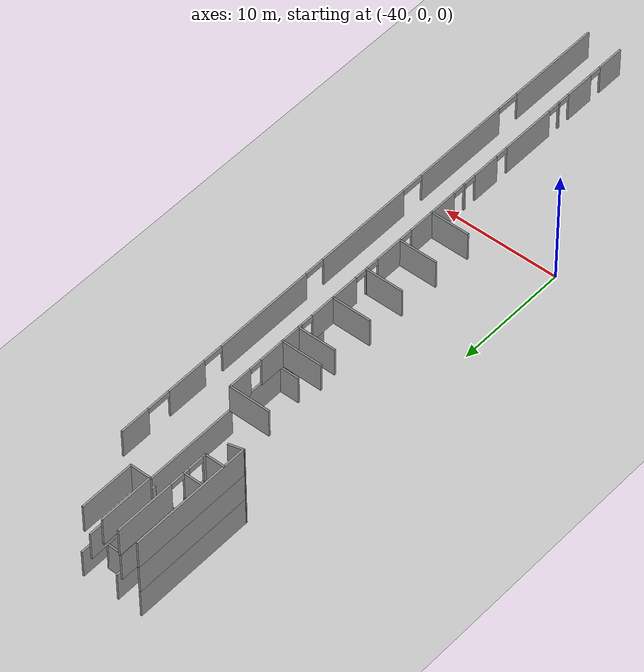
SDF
<sdf version="1.7">
 <world name="default">
  <model name="ground_plane">
   <static>1</static>
   <link name="link">
    <collision name="collision">
     <geometry><plane><normal>0 0 1</normal><size>100 100</size></plane></geometry>
     <surface><friction><ode><mu>100</mu><mu2>50</mu2></ode></friction></surface>
    </collision>
    <visual name="visual">
     <cast_shadows>0</cast_shadows>
     <geometry><plane><normal>0 0 1</normal><size>100 100</size></plane></geometry>
     <material>
      <script><uri>file://media/materials/scripts/gazebo.material</uri><name>Gazebo/Grey</name></script>
     </material>
    </visual>
   </link>
  </model>
  <model name="Anselm_Turmeda">
   <pose>-32.7988 -2.37459 0 0 -0 0</pose>
   <link name="Wall_10">
    <collision name="Wall_10_Collision">
     <geometry><box><size>10.5 0.15 2.5</size></box></geometry>
     <pose>0 0 1.25 0 -0 0</pose>
    </collision>
    <visual name="Wall_10_Visual">
     <pose>0 0 1.25 0 -0 0</pose>
     <geometry><box><size>10.5 0.15 2.5</size></box></geometry>
     <material>
      <script><uri>file://media/materials/scripts/gazebo.material</uri><name>Gazebo/Grey</name></script>
      <ambient>1 1 1 1</ambient>
     </material>
     <meta><layer>0</layer></meta>
    </visual>
    <pose>-5.37628 38.6025 0 0 -0 -1.5708</pose>
   </link>
   <link name="Wall_11">
    <collision name="Wall_11_Collision">
     <geometry><box><size>1.25 0.15 2.5</size></box></geometry>
     <pose>0 0 1.25 0 -0 0</pose>
    </collision>
    <visual name="Wall_11_Visual">
     <pose>0 0 1.25 0 -0 0</pose>
     <geometry><box><size>1.25 0.15 2.5</size></box></geometry>
     <material>
      <script><uri>file://media/materials/scripts/gazebo.material</uri><name>Gazebo/Grey</name></script>
      <ambient>1 1 1 1</ambient>
     </material>
     <meta><layer>0</layer></meta>
    </visual>
    <pose>-4.84502 33.5698 0 0 -0 0.261799</pose>
   </link>
   <link name="Wall_291">
    <pose>1.80373 12.5669 5 0 -0 1.5708</pose>
    <visual name="Wall_291_Visual_0">
     <pose>-20.7508 0 1.25 0 -0 0</pose>
     <geometry><box><size>8.24846 0.15 2.5</size></box></geometry>
     <material>
      <script><uri>file://media/materials/scripts/gazebo.material</uri><name>Gazebo/Grey</name></script>
      <ambient>1 1 1 1</ambient>
     </material>
     <meta><layer>2</layer></meta>
    </visual>
    <collision name="Wall_291_Collision_0">
     <geometry><box><size>8.24846 0.15 2.5</size></box></geometry>
     <pose>-20.7508 0 1.25 0 -0 0</pose>
    </collision>
    <visual name="Wall_291_Visual_1">
     <pose>-10.348 0 1.25 0 -0 0</pose>
     <geometry><box><size>8.59057 0.15 2.5</size></box></geometry>
     <material>
      <script><uri>file://media/materials/scripts/gazebo.material</uri><name>Gazebo/Grey</name></script>
      <ambient>1 1 1 1</ambient>
     </material>
     <meta><layer>2</layer></meta>
    </visual>
    <collision name="Wall_291_Collision_1">
     <geometry><box><size>8.59057 0.15 2.5</size></box></geometry>
     <pose>-10.348 0 1.25 0 -0 0</pose>
    </collision>
    <visual name="Wall_291_Visual_2">
     <pose>0.182196 0 1.25 0 -0 0</pose>
     <geometry><box><size>8.60034 0.15 2.5</size></box></geometry>
     <material>
      <script><uri>file://media/materials/scripts/gazebo.material</uri><name>Gazebo/Grey</name></script>
      <ambient>1 1 1 1</ambient>
     </material>
     <meta><layer>2</layer></meta>
    </visual>
    <collision name="Wall_291_Collision_2">
     <geometry><box><size>8.60034 0.15 2.5</size></box></geometry>
     <pose>0.182196 0 1.25 0 -0 0</pose>
    </collision>
    <visual name="Wall_291_Visual_3">
     <pose>10.5989 0 1.25 0 -0 0</pose>
     <geometry><box><size>8.67698 0.15 2.5</size></box></geometry>
     <material>
      <script><uri>file://media/materials/scripts/gazebo.material</uri><name>Gazebo/Grey</name></script>
      <ambient>1 1 1 1</ambient>
     </material>
     <meta><layer>2</layer></meta>
    </visual>
    <collision name="Wall_291_Collision_3">
     <geometry><box><size>8.67698 0.15 2.5</size></box></geometry>
     <pose>10.5989 0 1.25 0 -0 0</pose>
    </collision>
    <visual name="Wall_291_Visual_4">
     <pose>18.4605 0 1.25 0 -0 0</pose>
     <geometry><box><size>3.55516 0.15 2.5</size></box></geometry>
     <material>
      <script><uri>file://media/materials/scripts/gazebo.material</uri><name>Gazebo/Grey</name></script>
      <ambient>1 1 1 1</ambient>
     </material>
     <meta><layer>2</layer></meta>
    </visual>
    <collision name="Wall_291_Collision_4">
     <geometry><box><size>3.55516 0.15 2.5</size></box></geometry>
     <pose>18.4605 0 1.25 0 -0 0</pose>
    </collision>
    <visual name="Wall_291_Visual_5">
     <pose>23.5756 0 1.25 0 -0 0</pose>
     <geometry><box><size>2.59878 0.15 2.5</size></box></geometry>
     <material>
      <script><uri>file://media/materials/scripts/gazebo.material</uri><name>Gazebo/Grey</name></script>
      <ambient>1 1 1 1</ambient>
     </material>
     <meta><layer>2</layer></meta>
    </visual>
    <collision name="Wall_291_Collision_5">
     <geometry><box><size>2.59878 0.15 2.5</size></box></geometry>
     <pose>23.5756 0 1.25 0 -0 0</pose>
    </collision>
    <visual name="Wall_291_Visual_6">
     <pose>-15.6349 0 2.25 0 -0 0</pose>
     <geometry><box><size>1.98325 0.15 0.5</size></box></geometry>
     <material>
      <script><uri>file://media/materials/scripts/gazebo.material</uri><name>Gazebo/Grey</name></script>
      <ambient>1 1 1 1</ambient>
     </material>
     <meta><layer>2</layer></meta>
    </visual>
    <collision name="Wall_291_Collision_6">
     <geometry><box><size>1.98325 0.15 0.5</size></box></geometry>
     <pose>-15.6349 0 2.25 0 -0 0</pose>
    </collision>
    <visual name="Wall_291_Visual_7">
     <pose>-5.08535 0 2.25 0 -0 0</pose>
     <geometry><box><size>1.93475 0.15 0.5</size></box></geometry>
     <material>
      <script><uri>file://media/materials/scripts/gazebo.material</uri><name>Gazebo/Grey</name></script>
      <ambient>1 1 1 1</ambient>
     </material>
     <meta><layer>2</layer></meta>
    </visual>
    <collision name="Wall_291_Collision_7">
     <geometry><box><size>1.93475 0.15 0.5</size></box></geometry>
     <pose>-5.08535 0 2.25 0 -0 0</pose>
    </collision>
    <visual name="Wall_291_Visual_8">
     <pose>5.37138 0 2.25 0 -0 0</pose>
     <geometry><box><size>1.77802 0.15 0.5</size></box></geometry>
     <material>
      <script><uri>file://media/materials/scripts/gazebo.material</uri><name>Gazebo/Grey</name></script>
      <ambient>1 1 1 1</ambient>
     </material>
     <meta><layer>2</layer></meta>
    </visual>
    <collision name="Wall_291_Collision_8">
     <geometry><box><size>1.77802 0.15 0.5</size></box></geometry>
     <pose>5.37138 0 2.25 0 -0 0</pose>
    </collision>
    <visual name="Wall_291_Visual_9">
     <pose>15.8101 0 2.25 0 -0 0</pose>
     <geometry><box><size>1.74551 0.15 0.5</size></box></geometry>
     <material>
      <script><uri>file://media/materials/scripts/gazebo.material</uri><name>Gazebo/Grey</name></script>
      <ambient>1 1 1 1</ambient>
     </material>
     <meta><layer>2</layer></meta>
    </visual>
    <collision name="Wall_291_Collision_9">
     <geometry><box><size>1.74551 0.15 0.5</size></box></geometry>
     <pose>15.8101 0 2.25 0 -0 0</pose>
    </collision>
    <visual name="Wall_291_Visual_10">
     <pose>21.2571 0 2.25 0 -0 0</pose>
     <geometry><box><size>2.03818 0.15 0.5</size></box></geometry>
     <material>
      <script><uri>file://media/materials/scripts/gazebo.material</uri><name>Gazebo/Grey</name></script>
      <ambient>1 1 1 1</ambient>
     </material>
     <meta><layer>2</layer></meta>
    </visual>
    <collision name="Wall_291_Collision_10">
     <geometry><box><size>2.03818 0.15 0.5</size></box></geometry>
     <pose>21.2571 0 2.25 0 -0 0</pose>
    </collision>
   </link>
   <link name="Wall_303">
    <collision name="Wall_303_Collision">
     <geometry><box><size>3.5 0.15 2.5</size></box></geometry>
     <pose>0 0 1.25 0 -0 0</pose>
    </collision>
    <visual name="Wall_303_Visual">
     <pose>0 0 1.25 0 -0 0</pose>
     <geometry><box><size>3.5 0.15 2.5</size></box></geometry>
     <material>
      <script><uri>file://media/materials/scripts/gazebo.material</uri><name>Gazebo/Grey</name></script>
      <ambient>1 1 1 1</ambient>
     </material>
     <meta><layer>2</layer></meta>
    </visual>
    <pose>-2.71008 29.8134 5 0 -0 0</pose>
   </link>
   <link name="Wall_304">
    <pose>-1.03508 8.7634 5 0 -0 -1.5708</pose>
    <visual name="Wall_304_Visual_0">
     <pose>-20.1007 0 1.25 0 -0 0</pose>
     <geometry><box><size>2.04853 0.15 2.5</size></box></geometry>
     <material>
      <script><uri>file://media/materials/scripts/gazebo.material</uri><name>Gazebo/Grey</name></script>
      <ambient>1 1 1 1</ambient>
     </material>
     <meta><layer>2</layer></meta>
    </visual>
    <collision name="Wall_304_Collision_0">
     <geometry><box><size>2.04853 0.15 2.5</size></box></geometry>
     <pose>-20.1007 0 1.25 0 -0 0</pose>
    </collision>
    <visual name="Wall_304_Visual_1">
     <pose>-15.8724 0 1.25 0 -0 0</pose>
     <geometry><box><size>4.20265 0.15 2.5</size></box></geometry>
     <material>
      <script><uri>file://media/materials/scripts/gazebo.material</uri><name>Gazebo/Grey</name></script>
      <ambient>1 1 1 1</ambient>
     </material>
     <meta><layer>2</layer></meta>
    </visual>
    <collision name="Wall_304_Collision_1">
     <geometry><box><size>4.20265 0.15 2.5</size></box></geometry>
     <pose>-15.8724 0 1.25 0 -0 0</pose>
    </collision>
    <visual name="Wall_304_Visual_2">
     <pose>-10.4225 0 1.25 0 -0 0</pose>
     <geometry><box><size>4.57209 0.15 2.5</size></box></geometry>
     <material>
      <script><uri>file://media/materials/scripts/gazebo.material</uri><name>Gazebo/Grey</name></script>
      <ambient>1 1 1 1</ambient>
     </material>
     <meta><layer>2</layer></meta>
    </visual>
    <collision name="Wall_304_Collision_2">
     <geometry><box><size>4.57209 0.15 2.5</size></box></geometry>
     <pose>-10.4225 0 1.25 0 -0 0</pose>
    </collision>
    <visual name="Wall_304_Visual_3">
     <pose>-7.02601 0 1.25 0 -0 0</pose>
     <geometry><box><size>0.194499 0.15 2.5</size></box></geometry>
     <material>
      <script><uri>file://media/materials/scripts/gazebo.material</uri><name>Gazebo/Grey</name></script>
      <ambient>1 1 1 1</ambient>
     </material>
     <meta><layer>2</layer></meta>
    </visual>
    <collision name="Wall_304_Collision_3">
     <geometry><box><size>0.194499 0.15 2.5</size></box></geometry>
     <pose>-7.02601 0 1.25 0 -0 0</pose>
    </collision>
    <visual name="Wall_304_Visual_4">
     <pose>-4.61945 0 1.25 0 -0 0</pose>
     <geometry><box><size>2.43059 0.15 2.5</size></box></geometry>
     <material>
      <script><uri>file://media/materials/scripts/gazebo.material</uri><name>Gazebo/Grey</name></script>
      <ambient>1 1 1 1</ambient>
     </material>
     <meta><layer>2</layer></meta>
    </visual>
    <collision name="Wall_304_Collision_4">
     <geometry><box><size>2.43059 0.15 2.5</size></box></geometry>
     <pose>-4.61945 0 1.25 0 -0 0</pose>
    </collision>
    <visual name="Wall_304_Visual_5">
     <pose>0.057115 0 1.25 0 -0 0</pose>
     <geometry><box><size>4.66985 0.15 2.5</size></box></geometry>
     <material>
      <script><uri>file://media/materials/scripts/gazebo.material</uri><name>Gazebo/Grey</name></script>
      <ambient>1 1 1 1</ambient>
     </material>
     <meta><layer>2</layer></meta>
    </visual>
    <collision name="Wall_304_Collision_5">
     <geometry><box><size>4.66985 0.15 2.5</size></box></geometry>
     <pose>0.057115 0 1.25 0 -0 0</pose>
    </collision>
    <visual name="Wall_304_Visual_6">
     <pose>3.51705 0 1.25 0 -0 0</pose>
     <geometry><box><size>0.158998 0.15 2.5</size></box></geometry>
     <material>
      <script><uri>file://media/materials/scripts/gazebo.material</uri><name>Gazebo/Grey</name></script>
      <ambient>1 1 1 1</ambient>
     </material>
     <meta><layer>2</layer></meta>
    </visual>
    <collision name="Wall_304_Collision_6">
     <geometry><box><size>0.158998 0.15 2.5</size></box></geometry>
     <pose>3.51705 0 1.25 0 -0 0</pose>
    </collision>
    <visual name="Wall_304_Visual_7">
     <pose>5.85979 0 1.25 0 -0 0</pose>
     <geometry><box><size>2.46779 0.15 2.5</size></box></geometry>
     <material>
      <script><uri>file://media/materials/scripts/gazebo.material</uri><name>Gazebo/Grey</name></script>
      <ambient>1 1 1 1</ambient>
     </material>
     <meta><layer>2</layer></meta>
    </visual>
    <collision name="Wall_304_Collision_7">
     <geometry><box><size>2.46779 0.15 2.5</size></box></geometry>
     <pose>5.85979 0 1.25 0 -0 0</pose>
    </collision>
    <visual name="Wall_304_Visual_8">
     <pose>10.5608 0 1.25 0 -0 0</pose>
     <geometry><box><size>4.79399 0.15 2.5</size></box></geometry>
     <material>
      <script><uri>file://media/materials/scripts/gazebo.material</uri><name>Gazebo/Grey</name></script>
      <ambient>1 1 1 1</ambient>
     </material>
     <meta><layer>2</layer></meta>
    </visual>
    <collision name="Wall_304_Collision_8">
     <geometry><box><size>4.79399 0.15 2.5</size></box></geometry>
     <pose>10.5608 0 1.25 0 -0 0</pose>
    </collision>
    <visual name="Wall_304_Visual_9">
     <pose>14.0464 0 1.25 0 -0 0</pose>
     <geometry><box><size>0.150914 0.15 2.5</size></box></geometry>
     <material>
      <script><uri>file://media/materials/scripts/gazebo.material</uri><name>Gazebo/Grey</name></script>
      <ambient>1 1 1 1</ambient>
     </material>
     <meta><layer>2</layer></meta>
    </visual>
    <collision name="Wall_304_Collision_9">
     <geometry><box><size>0.150914 0.15 2.5</size></box></geometry>
     <pose>14.0464 0 1.25 0 -0 0</pose>
    </collision>
    <visual name="Wall_304_Visual_10">
     <pose>16.411 0 1.25 0 -0 0</pose>
     <geometry><box><size>2.55185 0.15 2.5</size></box></geometry>
     <material>
      <script><uri>file://media/materials/scripts/gazebo.material</uri><name>Gazebo/Grey</name></script>
      <ambient>1 1 1 1</ambient>
     </material>
     <meta><layer>2</layer></meta>
    </visual>
    <collision name="Wall_304_Collision_10">
     <geometry><box><size>2.55185 0.15 2.5</size></box></geometry>
     <pose>16.411 0 1.25 0 -0 0</pose>
    </collision>
    <visual name="Wall_304_Visual_11">
     <pose>19.9287 0 1.25 0 -0 0</pose>
     <geometry><box><size>2.3926 0.15 2.5</size></box></geometry>
     <material>
      <script><uri>file://media/materials/scripts/gazebo.material</uri><name>Gazebo/Grey</name></script>
      <ambient>1 1 1 1</ambient>
     </material>
     <meta><layer>2</layer></meta>
    </visual>
    <collision name="Wall_304_Collision_11">
     <geometry><box><size>2.3926 0.15 2.5</size></box></geometry>
     <pose>19.9287 0 1.25 0 -0 0</pose>
    </collision>
    <visual name="Wall_304_Visual_12">
     <pose>-18.5251 0 2.25 0 -0 0</pose>
     <geometry><box><size>1.10271 0.15 0.5</size></box></geometry>
     <material>
      <script><uri>file://media/materials/scripts/gazebo.material</uri><name>Gazebo/Grey</name></script>
      <ambient>1 1 1 1</ambient>
     </material>
     <meta><layer>2</layer></meta>
    </visual>
    <collision name="Wall_304_Collision_12">
     <geometry><box><size>1.10271 0.15 0.5</size></box></geometry>
     <pose>-18.5251 0 2.25 0 -0 0</pose>
    </collision>
    <visual name="Wall_304_Visual_13">
     <pose>-13.2398 0 2.25 0 -0 0</pose>
     <geometry><box><size>1.0626 0.15 0.5</size></box></geometry>
     <material>
      <script><uri>file://media/materials/scripts/gazebo.material</uri><name>Gazebo/Grey</name></script>
      <ambient>1 1 1 1</ambient>
     </material>
     <meta><layer>2</layer></meta>
    </visual>
    <collision name="Wall_304_Collision_13">
     <geometry><box><size>1.0626 0.15 0.5</size></box></geometry>
     <pose>-13.2398 0 2.25 0 -0 0</pose>
    </collision>
    <visual name="Wall_304_Visual_14">
     <pose>-7.62985 0 2.25 0 -0 0</pose>
     <geometry><box><size>1.01317 0.15 0.5</size></box></geometry>
     <material>
      <script><uri>file://media/materials/scripts/gazebo.material</uri><name>Gazebo/Grey</name></script>
      <ambient>1 1 1 1</ambient>
     </material>
     <meta><layer>2</layer></meta>
    </visual>
    <collision name="Wall_304_Collision_14">
     <geometry><box><size>1.01317 0.15 0.5</size></box></geometry>
     <pose>-7.62985 0 2.25 0 -0 0</pose>
    </collision>
    <visual name="Wall_304_Visual_15">
     <pose>-6.38176 0 2.25 0 -0 0</pose>
     <geometry><box><size>1.09401 0.15 0.5</size></box></geometry>
     <material>
      <script><uri>file://media/materials/scripts/gazebo.material</uri><name>Gazebo/Grey</name></script>
      <ambient>1 1 1 1</ambient>
     </material>
     <meta><layer>2</layer></meta>
    </visual>
    <collision name="Wall_304_Collision_15">
     <geometry><box><size>1.09401 0.15 0.5</size></box></geometry>
     <pose>-6.38176 0 2.25 0 -0 0</pose>
    </collision>
    <visual name="Wall_304_Visual_16">
     <pose>-2.84098 0 2.25 0 -0 0</pose>
     <geometry><box><size>1.12635 0.15 0.5</size></box></geometry>
     <material>
      <script><uri>file://media/materials/scripts/gazebo.material</uri><name>Gazebo/Grey</name></script>
      <ambient>1 1 1 1</ambient>
     </material>
     <meta><layer>2</layer></meta>
    </visual>
    <collision name="Wall_304_Collision_16">
     <geometry><box><size>1.12635 0.15 0.5</size></box></geometry>
     <pose>-2.84098 0 2.25 0 -0 0</pose>
    </collision>
    <visual name="Wall_304_Visual_17">
     <pose>2.91479 0 2.25 0 -0 0</pose>
     <geometry><box><size>1.04551 0.15 0.5</size></box></geometry>
     <material>
      <script><uri>file://media/materials/scripts/gazebo.material</uri><name>Gazebo/Grey</name></script>
      <ambient>1 1 1 1</ambient>
     </material>
     <meta><layer>2</layer></meta>
    </visual>
    <collision name="Wall_304_Collision_17">
     <geometry><box><size>1.04551 0.15 0.5</size></box></geometry>
     <pose>2.91479 0 2.25 0 -0 0</pose>
    </collision>
    <visual name="Wall_304_Visual_18">
     <pose>4.11122 0 2.25 0 -0 0</pose>
     <geometry><box><size>1.02934 0.15 0.5</size></box></geometry>
     <material>
      <script><uri>file://media/materials/scripts/gazebo.material</uri><name>Gazebo/Grey</name></script>
      <ambient>1 1 1 1</ambient>
     </material>
     <meta><layer>2</layer></meta>
    </visual>
    <collision name="Wall_304_Collision_18">
     <geometry><box><size>1.02934 0.15 0.5</size></box></geometry>
     <pose>4.11122 0 2.25 0 -0 0</pose>
    </collision>
    <visual name="Wall_304_Visual_19">
     <pose>7.62873 0 2.25 0 -0 0</pose>
     <geometry><box><size>1.07009 0.15 0.5</size></box></geometry>
     <material>
      <script><uri>file://media/materials/scripts/gazebo.material</uri><name>Gazebo/Grey</name></script>
      <ambient>1 1 1 1</ambient>
     </material>
     <meta><layer>2</layer></meta>
    </visual>
    <collision name="Wall_304_Collision_19">
     <geometry><box><size>1.07009 0.15 0.5</size></box></geometry>
     <pose>7.62873 0 2.25 0 -0 0</pose>
    </collision>
    <visual name="Wall_304_Visual_20">
     <pose>13.4644 0 2.25 0 -0 0</pose>
     <geometry><box><size>1.01317 0.15 0.5</size></box></geometry>
     <material>
      <script><uri>file://media/materials/scripts/gazebo.material</uri><name>Gazebo/Grey</name></script>
      <ambient>1 1 1 1</ambient>
     </material>
     <meta><layer>2</layer></meta>
    </visual>
    <collision name="Wall_304_Collision_20">
     <geometry><box><size>1.01317 0.15 0.5</size></box></geometry>
     <pose>13.4644 0 2.25 0 -0 0</pose>
    </collision>
    <visual name="Wall_304_Visual_21">
     <pose>14.6284 0 2.25 0 -0 0</pose>
     <geometry><box><size>1.01317 0.15 0.5</size></box></geometry>
     <material>
      <script><uri>file://media/materials/scripts/gazebo.material</uri><name>Gazebo/Grey</name></script>
      <ambient>1 1 1 1</ambient>
     </material>
     <meta><layer>2</layer></meta>
    </visual>
    <collision name="Wall_304_Collision_21">
     <geometry><box><size>1.01317 0.15 0.5</size></box></geometry>
     <pose>14.6284 0 2.25 0 -0 0</pose>
    </collision>
    <visual name="Wall_304_Visual_22">
     <pose>18.2096 0 2.25 0 -0 0</pose>
     <geometry><box><size>1.04551 0.15 0.5</size></box></geometry>
     <material>
      <script><uri>file://media/materials/scripts/gazebo.material</uri><name>Gazebo/Grey</name></script>
      <ambient>1 1 1 1</ambient>
     </material>
     <meta><layer>2</layer></meta>
    </visual>
    <collision name="Wall_304_Collision_22">
     <geometry><box><size>1.04551 0.15 0.5</size></box></geometry>
     <pose>18.2096 0 2.25 0 -0 0</pose>
    </collision>
   </link>
   <link name="Wall_329">
    <collision name="Wall_329_Collision">
     <geometry><box><size>3.35 0.15 2.5</size></box></geometry>
     <pose>0 0 1.25 0 -0 0</pose>
    </collision>
    <visual name="Wall_329_Visual">
     <pose>0 0 1.25 0 -0 0</pose>
     <geometry><box><size>3.35 0.15 2.5</size></box></geometry>
     <material>
      <script><uri>file://media/materials/scripts/gazebo.material</uri><name>Gazebo/Grey</name></script>
      <ambient>1 1 1 1</ambient>
     </material>
     <meta><layer>2</layer></meta>
    </visual>
    <pose>-2.61484 8.76611 5 0 -0 3.14159</pose>
   </link>
   <link name="Wall_333">
    <collision name="Wall_333_Collision">
     <geometry><box><size>3.25 0.15 2.5</size></box></geometry>
     <pose>0 0 1.25 0 -0 0</pose>
    </collision>
    <visual name="Wall_333_Visual">
     <pose>0 0 1.25 0 -0 0</pose>
     <geometry><box><size>3.25 0.15 2.5</size></box></geometry>
     <material>
      <script><uri>file://media/materials/scripts/gazebo.material</uri><name>Gazebo/Grey</name></script>
      <ambient>1 1 1 1</ambient>
     </material>
     <meta><layer>2</layer></meta>
    </visual>
    <pose>-2.6657 12.2188 5 0 -0 3.14159</pose>
   </link>
   <link name="Wall_335">
    <collision name="Wall_335_Collision">
     <geometry><box><size>3.25 0.15 2.5</size></box></geometry>
     <pose>0 0 1.25 0 -0 0</pose>
    </collision>
    <visual name="Wall_335_Visual">
     <pose>0 0 1.25 0 -0 0</pose>
     <geometry><box><size>3.25 0.15 2.5</size></box></geometry>
     <material>
      <script><uri>file://media/materials/scripts/gazebo.material</uri><name>Gazebo/Grey</name></script>
      <ambient>1 1 1 1</ambient>
     </material>
     <meta><layer>2</layer></meta>
    </visual>
    <pose>-2.61652 15.7843 5 0 -0 3.14159</pose>
   </link>
   <link name="Wall_339">
    <collision name="Wall_339_Collision">
     <geometry><box><size>3.35 0.15 2.5</size></box></geometry>
     <pose>0 0 1.25 0 -0 0</pose>
    </collision>
    <visual name="Wall_339_Visual">
     <pose>0 0 1.25 0 -0 0</pose>
     <geometry><box><size>3.35 0.15 2.5</size></box></geometry>
     <material>
      <script><uri>file://media/materials/scripts/gazebo.material</uri><name>Gazebo/Grey</name></script>
      <ambient>1 1 1 1</ambient>
     </material>
     <meta><layer>2</layer></meta>
    </visual>
    <pose>-2.64193 19.276 5 0 -0 3.14159</pose>
   </link>
   <link name="Wall_341">
    <collision name="Wall_341_Collision">
     <geometry><box><size>3.25 0.15 2.5</size></box></geometry>
     <pose>0 0 1.25 0 -0 0</pose>
    </collision>
    <visual name="Wall_341_Visual">
     <pose>0 0 1.25 0 -0 0</pose>
     <geometry><box><size>3.25 0.15 2.5</size></box></geometry>
     <material>
      <script><uri>file://media/materials/scripts/gazebo.material</uri><name>Gazebo/Grey</name></script>
      <ambient>1 1 1 1</ambient>
     </material>
     <meta><layer>2</layer></meta>
    </visual>
    <pose>-2.61652 22.8415 5 0 -0 3.14159</pose>
   </link>
   <link name="Wall_343">
    <collision name="Wall_343_Collision">
     <geometry><box><size>3.5 0.15 2.5</size></box></geometry>
     <pose>0 0 1.25 0 -0 0</pose>
    </collision>
    <visual name="Wall_343_Visual">
     <pose>0 0 1.25 0 -0 0</pose>
     <geometry><box><size>3.5 0.15 2.5</size></box></geometry>
     <material>
      <script><uri>file://media/materials/scripts/gazebo.material</uri><name>Gazebo/Grey</name></script>
      <ambient>1 1 1 1</ambient>
     </material>
     <meta><layer>2</layer></meta>
    </visual>
    <pose>-2.69234 24.4889 5 0 -0 3.14159</pose>
   </link>
   <link name="Wall_347">
    <collision name="Wall_347_Collision">
     <geometry><box><size>4.75 0.15 2.5</size></box></geometry>
     <pose>0 0 1.25 0 -0 0</pose>
    </collision>
    <visual name="Wall_347_Visual">
     <pose>0 0 1.25 0 -0 0</pose>
     <geometry><box><size>4.75 0.15 2.5</size></box></geometry>
     <material>
      <script><uri>file://media/materials/scripts/gazebo.material</uri><name>Gazebo/Grey</name></script>
      <ambient>1 1 1 1</ambient>
     </material>
     <meta><layer>2</layer></meta>
    </visual>
    <pose>-0.627861 41.503 5 0 -0 -1.5708</pose>
   </link>
   <link name="Wall_35">
    <collision name="Wall_35_Collision">
     <geometry><box><size>10.5 0.15 2.5</size></box></geometry>
     <pose>0 0 1.25 0 -0 0</pose>
    </collision>
    <visual name="Wall_35_Visual">
     <pose>0 0 1.25 0 -0 0</pose>
     <geometry><box><size>10.5 0.15 2.5</size></box></geometry>
     <material>
      <script><uri>file://media/materials/scripts/gazebo.material</uri><name>Gazebo/Grey</name></script>
      <ambient>1 1 1 1</ambient>
     </material>
     <meta><layer>1</layer></meta>
    </visual>
    <pose>-5.37628 38.6025 2.5 0 -0 -1.5708</pose>
   </link>
   <link name="Wall_354">
    <pose>-3.74372 40.628 5 0 -0 -1.5708</pose>
    <visual name="Wall_354_Visual_0">
     <pose>-0.683168 0 1.25 0 -0 0</pose>
     <geometry><box><size>5.13366 0.15 2.5</size></box></geometry>
     <material>
      <script><uri>file://media/materials/scripts/gazebo.material</uri><name>Gazebo/Grey</name></script>
      <ambient>1 1 1 1</ambient>
     </material>
     <meta><layer>2</layer></meta>
    </visual>
    <collision name="Wall_354_Collision_0">
     <geometry><box><size>5.13366 0.15 2.5</size></box></geometry>
     <pose>-0.683168 0 1.25 0 -0 0</pose>
    </collision>
    <visual name="Wall_354_Visual_1">
     <pose>3.1772 0 1.25 0 -0 0</pose>
     <geometry><box><size>0.145605 0.15 2.5</size></box></geometry>
     <material>
      <script><uri>file://media/materials/scripts/gazebo.material</uri><name>Gazebo/Grey</name></script>
      <ambient>1 1 1 1</ambient>
     </material>
     <meta><layer>2</layer></meta>
    </visual>
    <collision name="Wall_354_Collision_1">
     <geometry><box><size>0.145605 0.15 2.5</size></box></geometry>
     <pose>3.1772 0 1.25 0 -0 0</pose>
    </collision>
    <visual name="Wall_354_Visual_2">
     <pose>2.49403 0 2.25 0 -0 0</pose>
     <geometry><box><size>1.22073 0.15 0.5</size></box></geometry>
     <material>
      <script><uri>file://media/materials/scripts/gazebo.material</uri><name>Gazebo/Grey</name></script>
      <ambient>1 1 1 1</ambient>
     </material>
     <meta><layer>2</layer></meta>
    </visual>
    <collision name="Wall_354_Collision_2">
     <geometry><box><size>1.22073 0.15 0.5</size></box></geometry>
     <pose>2.49403 0 2.25 0 -0 0</pose>
    </collision>
   </link>
   <link name="Wall_355">
    <collision name="Wall_355_Collision">
     <geometry><box><size>1.75 0.15 2.5</size></box></geometry>
     <pose>0 0 1.25 0 -0 0</pose>
    </collision>
    <visual name="Wall_355_Visual">
     <pose>0 0 1.25 0 -0 0</pose>
     <geometry><box><size>1.75 0.15 2.5</size></box></geometry>
     <material>
      <script><uri>file://media/materials/scripts/gazebo.material</uri><name>Gazebo/Grey</name></script>
      <ambient>1 1 1 1</ambient>
     </material>
     <meta><layer>2</layer></meta>
    </visual>
    <pose>-4.54372 37.453 5 0 -0 3.14159</pose>
   </link>
   <link name="Wall_357">
    <pose>-3.74372 36.403 5 0 -0 -1.5708</pose>
    <visual name="Wall_357_Visual_0">
     <pose>-0.866952 0 1.25 0 -0 0</pose>
     <geometry><box><size>0.516095 0.15 2.5</size></box></geometry>
     <material>
      <script><uri>file://media/materials/scripts/gazebo.material</uri><name>Gazebo/Grey</name></script>
      <ambient>1 1 1 1</ambient>
     </material>
     <meta><layer>2</layer></meta>
    </visual>
    <collision name="Wall_357_Collision_0">
     <geometry><box><size>0.516095 0.15 2.5</size></box></geometry>
     <pose>-0.866952 0 1.25 0 -0 0</pose>
    </collision>
    <visual name="Wall_357_Visual_1">
     <pose>0.94325 0 1.25 0 -0 0</pose>
     <geometry><box><size>0.3635 0.15 2.5</size></box></geometry>
     <material>
      <script><uri>file://media/materials/scripts/gazebo.material</uri><name>Gazebo/Grey</name></script>
      <ambient>1 1 1 1</ambient>
     </material>
     <meta><layer>2</layer></meta>
    </visual>
    <collision name="Wall_357_Collision_1">
     <geometry><box><size>0.3635 0.15 2.5</size></box></geometry>
     <pose>0.94325 0 1.25 0 -0 0</pose>
    </collision>
    <visual name="Wall_357_Visual_2">
     <pose>0.076298 0 2.25 0 -0 0</pose>
     <geometry><box><size>1.37041 0.15 0.5</size></box></geometry>
     <material>
      <script><uri>file://media/materials/scripts/gazebo.material</uri><name>Gazebo/Grey</name></script>
      <ambient>1 1 1 1</ambient>
     </material>
     <meta><layer>2</layer></meta>
    </visual>
    <collision name="Wall_357_Collision_2">
     <geometry><box><size>1.37041 0.15 0.5</size></box></geometry>
     <pose>0.076298 0 2.25 0 -0 0</pose>
    </collision>
   </link>
   <link name="Wall_358">
    <collision name="Wall_358_Collision">
     <geometry><box><size>1.75 0.15 2.5</size></box></geometry>
     <pose>0 0 1.25 0 -0 0</pose>
    </collision>
    <visual name="Wall_358_Visual">
     <pose>0 0 1.25 0 -0 0</pose>
     <geometry><box><size>1.75 0.15 2.5</size></box></geometry>
     <material>
      <script><uri>file://media/materials/scripts/gazebo.material</uri><name>Gazebo/Grey</name></script>
      <ambient>1 1 1 1</ambient>
     </material>
     <meta><layer>2</layer></meta>
    </visual>
    <pose>-4.54372 35.353 5 0 -0 3.14159</pose>
   </link>
   <link name="Wall_36">
    <collision name="Wall_36_Collision">
     <geometry><box><size>1.25 0.15 2.5</size></box></geometry>
     <pose>0 0 1.25 0 -0 0</pose>
    </collision>
    <visual name="Wall_36_Visual">
     <pose>0 0 1.25 0 -0 0</pose>
     <geometry><box><size>1.25 0.15 2.5</size></box></geometry>
     <material>
      <script><uri>file://media/materials/scripts/gazebo.material</uri><name>Gazebo/Grey</name></script>
      <ambient>1 1 1 1</ambient>
     </material>
     <meta><layer>1</layer></meta>
    </visual>
    <pose>-4.84502 33.5698 2.5 0 -0 0.261799</pose>
   </link>
   <link name="Wall_364">
    <collision name="Wall_364_Collision">
     <geometry><box><size>5.25 0.15 2.5</size></box></geometry>
     <pose>0 0 1.25 0 -0 0</pose>
    </collision>
    <visual name="Wall_364_Visual">
     <pose>0 0 1.25 0 -0 0</pose>
     <geometry><box><size>5.25 0.15 2.5</size></box></geometry>
     <material>
      <script><uri>file://media/materials/scripts/gazebo.material</uri><name>Gazebo/Grey</name></script>
      <ambient>1 1 1 1</ambient>
     </material>
     <meta><layer>1</layer></meta>
    </visual>
    <pose>-3.77288 41.2074 2.5 0 -0 -1.5708</pose>
   </link>
   <link name="Wall_365">
    <collision name="Wall_365_Collision">
     <geometry><box><size>1.5 0.15 2.5</size></box></geometry>
     <pose>0 0 1.25 0 -0 0</pose>
    </collision>
    <visual name="Wall_365_Visual">
     <pose>0 0 1.25 0 -0 0</pose>
     <geometry><box><size>1.5 0.15 2.5</size></box></geometry>
     <material>
      <script><uri>file://media/materials/scripts/gazebo.material</uri><name>Gazebo/Grey</name></script>
      <ambient>1 1 1 1</ambient>
     </material>
     <meta><layer>1</layer></meta>
    </visual>
    <pose>-3.09788 38.6574 2.5 0 -0 0</pose>
   </link>
   <link name="Wall_366">
    <collision name="Wall_366_Collision">
     <geometry><box><size>3.75 0.15 2.5</size></box></geometry>
     <pose>0 0 1.25 0 -0 0</pose>
    </collision>
    <visual name="Wall_366_Visual">
     <pose>0 0 1.25 0 -0 0</pose>
     <geometry><box><size>3.75 0.15 2.5</size></box></geometry>
     <material>
      <script><uri>file://media/materials/scripts/gazebo.material</uri><name>Gazebo/Grey</name></script>
      <ambient>1 1 1 1</ambient>
     </material>
     <meta><layer>1</layer></meta>
    </visual>
    <pose>-2.42288 40.4574 2.5 0 -0 1.5708</pose>
   </link>
   <link name="Wall_368">
    <collision name="Wall_368_Collision">
     <geometry><box><size>1.5 0.15 2.5</size></box></geometry>
     <pose>0 0 1.25 0 -0 0</pose>
    </collision>
    <visual name="Wall_368_Visual">
     <pose>0 0 1.25 0 -0 0</pose>
     <geometry><box><size>1.5 0.15 2.5</size></box></geometry>
     <material>
      <script><uri>file://media/materials/scripts/gazebo.material</uri><name>Gazebo/Grey</name></script>
      <ambient>1 1 1 1</ambient>
     </material>
     <meta><layer>1</layer></meta>
    </visual>
    <pose>-1.74788 38.6574 2.5 0 -0 0</pose>
   </link>
   <link name="Wall_369">
    <collision name="Wall_369_Collision">
     <geometry><box><size>5.25 0.15 2.5</size></box></geometry>
     <pose>0 0 1.25 0 -0 0</pose>
    </collision>
    <visual name="Wall_369_Visual">
     <pose>0 0 1.25 0 -0 0</pose>
     <geometry><box><size>5.25 0.15 2.5</size></box></geometry>
     <material>
      <script><uri>file://media/materials/scripts/gazebo.material</uri><name>Gazebo/Grey</name></script>
      <ambient>1 1 1 1</ambient>
     </material>
     <meta><layer>1</layer></meta>
    </visual>
    <pose>-1.07288 41.2074 2.5 0 -0 1.5708</pose>
   </link>
   <link name="Wall_371">
    <collision name="Wall_371_Collision">
     <geometry><box><size>1.75 0.15 2.5</size></box></geometry>
     <pose>0 0 1.25 0 -0 0</pose>
    </collision>
    <visual name="Wall_371_Visual">
     <pose>0 0 1.25 0 -0 0</pose>
     <geometry><box><size>1.75 0.15 2.5</size></box></geometry>
     <material>
      <script><uri>file://media/materials/scripts/gazebo.material</uri><name>Gazebo/Grey</name></script>
      <ambient>1 1 1 1</ambient>
     </material>
     <meta><layer>1</layer></meta>
    </visual>
    <pose>-4.51239 35.3543 2.5 0 -0 0</pose>
   </link>
   <link name="Wall_372">
    <collision name="Wall_372_Collision">
     <geometry><box><size>2.25 0.15 2.5</size></box></geometry>
     <pose>0 0 1.25 0 -0 0</pose>
    </collision>
    <visual name="Wall_372_Visual">
     <pose>0 0 1.25 0 -0 0</pose>
     <geometry><box><size>2.25 0.15 2.5</size></box></geometry>
     <material>
      <script><uri>file://media/materials/scripts/gazebo.material</uri><name>Gazebo/Grey</name></script>
      <ambient>1 1 1 1</ambient>
     </material>
     <meta><layer>1</layer></meta>
    </visual>
    <pose>-3.71239 36.4043 2.5 0 -0 1.5708</pose>
   </link>
   <link name="Wall_373">
    <collision name="Wall_373_Collision">
     <geometry><box><size>1.75 0.15 2.5</size></box></geometry>
     <pose>0 0 1.25 0 -0 0</pose>
    </collision>
    <visual name="Wall_373_Visual">
     <pose>0 0 1.25 0 -0 0</pose>
     <geometry><box><size>1.75 0.15 2.5</size></box></geometry>
     <material>
      <script><uri>file://media/materials/scripts/gazebo.material</uri><name>Gazebo/Grey</name></script>
      <ambient>1 1 1 1</ambient>
     </material>
     <meta><layer>1</layer></meta>
    </visual>
    <pose>-4.51239 37.4543 2.5 0 -0 3.14159</pose>
   </link>
   <link name="Wall_375">
    <collision name="Wall_375_Collision">
     <geometry><box><size>1.75 0.15 2.5</size></box></geometry>
     <pose>0 0 1.25 0 -0 0</pose>
    </collision>
    <visual name="Wall_375_Visual">
     <pose>0 0 1.25 0 -0 0</pose>
     <geometry><box><size>1.75 0.15 2.5</size></box></geometry>
     <material>
      <script><uri>file://media/materials/scripts/gazebo.material</uri><name>Gazebo/Grey</name></script>
      <ambient>1 1 1 1</ambient>
     </material>
     <meta><layer>0</layer></meta>
    </visual>
    <pose>-4.53378 35.3329 0 0 -0 0</pose>
   </link>
   <link name="Wall_376">
    <pose>-3.73377 36.3829 0 0 -0 1.5708</pose>
    <visual name="Wall_376_Visual_0">
     <pose>-0.939133 0 1.25 0 -0 0</pose>
     <geometry><box><size>0.371735 0.15 2.5</size></box></geometry>
     <material>
      <script><uri>file://media/materials/scripts/gazebo.material</uri><name>Gazebo/Grey</name></script>
      <ambient>1 1 1 1</ambient>
     </material>
     <meta><layer>0</layer></meta>
    </visual>
    <collision name="Wall_376_Collision_0">
     <geometry><box><size>0.371735 0.15 2.5</size></box></geometry>
     <pose>-0.939133 0 1.25 0 -0 0</pose>
    </collision>
    <visual name="Wall_376_Visual_1">
     <pose>0.892452 0 1.25 0 -0 0</pose>
     <geometry><box><size>0.465096 0.15 2.5</size></box></geometry>
     <material>
      <script><uri>file://media/materials/scripts/gazebo.material</uri><name>Gazebo/Grey</name></script>
      <ambient>1 1 1 1</ambient>
     </material>
     <meta><layer>0</layer></meta>
    </visual>
    <collision name="Wall_376_Collision_1">
     <geometry><box><size>0.465096 0.15 2.5</size></box></geometry>
     <pose>0.892452 0 1.25 0 -0 0</pose>
    </collision>
    <visual name="Wall_376_Visual_2">
     <pose>-0.04668 0 2.25 0 -0 0</pose>
     <geometry><box><size>1.41317 0.15 0.5</size></box></geometry>
     <material>
      <script><uri>file://media/materials/scripts/gazebo.material</uri><name>Gazebo/Grey</name></script>
      <ambient>1 1 1 1</ambient>
     </material>
     <meta><layer>0</layer></meta>
    </visual>
    <collision name="Wall_376_Collision_2">
     <geometry><box><size>1.41317 0.15 0.5</size></box></geometry>
     <pose>-0.04668 0 2.25 0 -0 0</pose>
    </collision>
   </link>
   <link name="Wall_377">
    <collision name="Wall_377_Collision">
     <geometry><box><size>1.75 0.15 2.5</size></box></geometry>
     <pose>0 0 1.25 0 -0 0</pose>
    </collision>
    <visual name="Wall_377_Visual">
     <pose>0 0 1.25 0 -0 0</pose>
     <geometry><box><size>1.75 0.15 2.5</size></box></geometry>
     <material>
      <script><uri>file://media/materials/scripts/gazebo.material</uri><name>Gazebo/Grey</name></script>
      <ambient>1 1 1 1</ambient>
     </material>
     <meta><layer>0</layer></meta>
    </visual>
    <pose>-4.53378 37.4329 0 0 -0 3.14159</pose>
   </link>
   <link name="Wall_382">
    <collision name="Wall_382_Collision">
     <geometry><box><size>1.85 0.15 2.5</size></box></geometry>
     <pose>0 0 1.25 0 -0 0</pose>
    </collision>
    <visual name="Wall_382_Visual">
     <pose>0 0 1.25 0 -0 0</pose>
     <geometry><box><size>1.85 0.15 2.5</size></box></geometry>
     <material>
      <script><uri>file://media/materials/scripts/gazebo.material</uri><name>Gazebo/Grey</name></script>
      <ambient>1 1 1 1</ambient>
     </material>
     <meta><layer>2</layer></meta>
    </visual>
    <pose>-1.47763 39.2031 5 0 -0 3.14147</pose>
   </link>
   <link name="Wall_384">
    <collision name="Wall_384_Collision">
     <geometry><box><size>0.5 0.15 1.3</size></box></geometry>
     <pose>0 0 0.65 0 -0 0</pose>
    </collision>
    <visual name="Wall_384_Visual">
     <pose>0 0 0.65 0 -0 0</pose>
     <geometry><box><size>0.5 0.15 1.3</size></box></geometry>
     <material>
      <script><uri>file://media/materials/scripts/gazebo.material</uri><name>Gazebo/Grey</name></script>
      <ambient>1 1 1 1</ambient>
     </material>
     <meta><layer>2</layer></meta>
    </visual>
    <pose>-2.3274 39.0282 5 0 -0 -1.5708</pose>
   </link>
   <link name="Wall_386">
    <collision name="Wall_386_Collision">
     <geometry><box><size>4.75 0.15 2.5</size></box></geometry>
     <pose>0 0 1.25 0 -0 0</pose>
    </collision>
    <visual name="Wall_386_Visual">
     <pose>0 0 1.25 0 -0 0</pose>
     <geometry><box><size>4.75 0.15 2.5</size></box></geometry>
     <material>
      <script><uri>file://media/materials/scripts/gazebo.material</uri><name>Gazebo/Grey</name></script>
      <ambient>1 1 1 1</ambient>
     </material>
     <meta><layer>2</layer></meta>
    </visual>
    <pose>-2.32763 41.5031 5 0 -0 1.5709</pose>
   </link>
   <link name="Wall_501">
    <collision name="Wall_501_Collision">
     <geometry><box><size>1.75 0.15 2.5</size></box></geometry>
     <pose>0 0 1.25 0 -0 0</pose>
    </collision>
    <visual name="Wall_501_Visual">
     <pose>0 0 1.25 0 -0 0</pose>
     <geometry><box><size>1.75 0.15 2.5</size></box></geometry>
     <material>
      <script><uri>file://media/materials/scripts/gazebo.material</uri><name>Gazebo/Grey</name></script>
      <ambient>1 1 1 1</ambient>
     </material>
     <meta><layer>0</layer></meta>
    </visual>
    <pose>-0.222519 23.0136 0 0 -0 0</pose>
   </link>
   <link name="Wall_502">
    <pose>0.57748 29.9386 0 0 -0 1.5708</pose>
    <visual name="Wall_502_Visual_0">
     <pose>-5.16611 0 1.25 0 -0 0</pose>
     <geometry><box><size>3.66778 0.15 2.5</size></box></geometry>
     <material>
      <script><uri>file://media/materials/scripts/gazebo.material</uri><name>Gazebo/Grey</name></script>
      <ambient>1 1 1 1</ambient>
     </material>
     <meta><layer>0</layer></meta>
    </visual>
    <collision name="Wall_502_Collision_0">
     <geometry><box><size>3.66778 0.15 2.5</size></box></geometry>
     <pose>-5.16611 0 1.25 0 -0 0</pose>
    </collision>
    <visual name="Wall_502_Visual_1">
     <pose>2.56186 0 1.25 0 -0 0</pose>
     <geometry><box><size>8.87629 0.15 2.5</size></box></geometry>
     <material>
      <script><uri>file://media/materials/scripts/gazebo.material</uri><name>Gazebo/Grey</name></script>
      <ambient>1 1 1 1</ambient>
     </material>
     <meta><layer>0</layer></meta>
    </visual>
    <collision name="Wall_502_Collision_1">
     <geometry><box><size>8.87629 0.15 2.5</size></box></geometry>
     <pose>2.56186 0 1.25 0 -0 0</pose>
    </collision>
    <visual name="Wall_502_Visual_2">
     <pose>-2.60425 0 2.25 0 -0 0</pose>
     <geometry><box><size>1.45593 0.15 0.5</size></box></geometry>
     <material>
      <script><uri>file://media/materials/scripts/gazebo.material</uri><name>Gazebo/Grey</name></script>
      <ambient>1 1 1 1</ambient>
     </material>
     <meta><layer>0</layer></meta>
    </visual>
    <collision name="Wall_502_Collision_2">
     <geometry><box><size>1.45593 0.15 0.5</size></box></geometry>
     <pose>-2.60425 0 2.25 0 -0 0</pose>
    </collision>
   </link>
   <link name="Wall_505">
    <collision name="Wall_505_Collision">
     <geometry><box><size>3.5 0.15 2.5</size></box></geometry>
     <pose>0 0 1.25 0 -0 0</pose>
    </collision>
    <visual name="Wall_505_Visual">
     <pose>0 0 1.25 0 -0 0</pose>
     <geometry><box><size>3.5 0.15 2.5</size></box></geometry>
     <material>
      <script><uri>file://media/materials/scripts/gazebo.material</uri><name>Gazebo/Grey</name></script>
      <ambient>1 1 1 1</ambient>
     </material>
     <meta><layer>0</layer></meta>
    </visual>
    <pose>-1.07519 40.5511 0 0 -0 -1.5708</pose>
   </link>
   <link name="Wall_508">
    <collision name="Wall_508_Collision">
     <geometry><box><size>1.5 0.15 2.5</size></box></geometry>
     <pose>0 0 1.25 0 -0 0</pose>
    </collision>
    <visual name="Wall_508_Visual">
     <pose>0 0 1.25 0 -0 0</pose>
     <geometry><box><size>1.5 0.15 2.5</size></box></geometry>
     <material>
      <script><uri>file://media/materials/scripts/gazebo.material</uri><name>Gazebo/Grey</name></script>
      <ambient>1 1 1 1</ambient>
     </material>
     <meta><layer>0</layer></meta>
    </visual>
    <pose>-1.75019 42.2261 0 0 -0 3.14159</pose>
   </link>
   <link name="Wall_509">
    <collision name="Wall_509_Collision">
     <geometry><box><size>3.5 0.15 2.5</size></box></geometry>
     <pose>0 0 1.25 0 -0 0</pose>
    </collision>
    <visual name="Wall_509_Visual">
     <pose>0 0 1.25 0 -0 0</pose>
     <geometry><box><size>3.5 0.15 2.5</size></box></geometry>
     <material>
      <script><uri>file://media/materials/scripts/gazebo.material</uri><name>Gazebo/Grey</name></script>
      <ambient>1 1 1 1</ambient>
     </material>
     <meta><layer>0</layer></meta>
    </visual>
    <pose>-2.42519 40.5511 0 0 -0 -1.5708</pose>
   </link>
   <link name="Wall_510">
    <collision name="Wall_510_Collision">
     <geometry><box><size>1 0.15 2.5</size></box></geometry>
     <pose>0 0 1.25 0 -0 0</pose>
    </collision>
    <visual name="Wall_510_Visual">
     <pose>0 0 1.25 0 -0 0</pose>
     <geometry><box><size>1 0.15 2.5</size></box></geometry>
     <material>
      <script><uri>file://media/materials/scripts/gazebo.material</uri><name>Gazebo/Grey</name></script>
      <ambient>1 1 1 1</ambient>
     </material>
     <meta><layer>0</layer></meta>
    </visual>
    <pose>-2.85019 38.8761 0 0 -0 3.14159</pose>
   </link>
   <link name="Wall_511">
    <collision name="Wall_511_Collision">
     <geometry><box><size>5 0.15 2.5</size></box></geometry>
     <pose>0 0 1.25 0 -0 0</pose>
    </collision>
    <visual name="Wall_511_Visual">
     <pose>0 0 1.25 0 -0 0</pose>
     <geometry><box><size>5 0.15 2.5</size></box></geometry>
     <material>
      <script><uri>file://media/materials/scripts/gazebo.material</uri><name>Gazebo/Grey</name></script>
      <ambient>1 1 1 1</ambient>
     </material>
     <meta><layer>0</layer></meta>
    </visual>
    <pose>-3.27519 41.3011 0 0 -0 1.5708</pose>
   </link>
   <link name="Wall_513">
    <collision name="Wall_513_Collision">
     <geometry><box><size>0.5 0.15 2.5</size></box></geometry>
     <pose>0 0 1.25 0 -0 0</pose>
    </collision>
    <visual name="Wall_513_Visual">
     <pose>0 0 1.25 0 -0 0</pose>
     <geometry><box><size>0.5 0.15 2.5</size></box></geometry>
     <material>
      <script><uri>file://media/materials/scripts/gazebo.material</uri><name>Gazebo/Grey</name></script>
      <ambient>1 1 1 1</ambient>
     </material>
     <meta><layer>0</layer></meta>
    </visual>
    <pose>-3.45019 38.8761 0 0 -0 3.14159</pose>
   </link>
   <link name="Wall_515">
    <pose>-3.73377 38.1079 0 0 -0 1.5708</pose>
    <visual name="Wall_515_Visual_0">
     <pose>-0.624227 0 1.25 0 -0 0</pose>
     <geometry><box><size>0.251546 0.15 2.5</size></box></geometry>
     <material>
      <script><uri>file://media/materials/scripts/gazebo.material</uri><name>Gazebo/Grey</name></script>
      <ambient>1 1 1 1</ambient>
     </material>
     <meta><layer>0</layer></meta>
    </visual>
    <collision name="Wall_515_Collision_0">
     <geometry><box><size>0.251546 0.15 2.5</size></box></geometry>
     <pose>-0.624227 0 1.25 0 -0 0</pose>
    </collision>
    <visual name="Wall_515_Visual_1">
     <pose>0.6858 0 1.25 0 -0 0</pose>
     <geometry><box><size>0.1284 0.15 2.5</size></box></geometry>
     <material>
      <script><uri>file://media/materials/scripts/gazebo.material</uri><name>Gazebo/Grey</name></script>
      <ambient>1 1 1 1</ambient>
     </material>
     <meta><layer>0</layer></meta>
    </visual>
    <collision name="Wall_515_Collision_1">
     <geometry><box><size>0.1284 0.15 2.5</size></box></geometry>
     <pose>0.6858 0 1.25 0 -0 0</pose>
    </collision>
    <visual name="Wall_515_Visual_2">
     <pose>0.061573 0 2.25 0 -0 0</pose>
     <geometry><box><size>1.12006 0.15 0.5</size></box></geometry>
     <material>
      <script><uri>file://media/materials/scripts/gazebo.material</uri><name>Gazebo/Grey</name></script>
      <ambient>1 1 1 1</ambient>
     </material>
     <meta><layer>0</layer></meta>
    </visual>
    <collision name="Wall_515_Collision_2">
     <geometry><box><size>1.12006 0.15 0.5</size></box></geometry>
     <pose>0.061573 0 2.25 0 -0 0</pose>
    </collision>
   </link>
   <link name="Wall_517">
    <collision name="Wall_517_Collision">
     <geometry><box><size>5 0.15 2.5</size></box></geometry>
     <pose>0 0 1.25 0 -0 0</pose>
    </collision>
    <visual name="Wall_517_Visual">
     <pose>0 0 1.25 0 -0 0</pose>
     <geometry><box><size>5 0.15 2.5</size></box></geometry>
     <material>
      <script><uri>file://media/materials/scripts/gazebo.material</uri><name>Gazebo/Grey</name></script>
      <ambient>1 1 1 1</ambient>
     </material>
     <meta><layer>0</layer></meta>
    </visual>
    <pose>-0.198959 41.3402 0 0 -0 1.5708</pose>
   </link>
   <link name="Wall_528">
    <collision name="Wall_528_Collision">
     <geometry><box><size>0.5 0.15 2.5</size></box></geometry>
     <pose>0 0 1.25 0 -0 0</pose>
    </collision>
    <visual name="Wall_528_Visual">
     <pose>0 0 1.25 0 -0 0</pose>
     <geometry><box><size>0.5 0.15 2.5</size></box></geometry>
     <material>
      <script><uri>file://media/materials/scripts/gazebo.material</uri><name>Gazebo/Grey</name></script>
      <ambient>1 1 1 1</ambient>
     </material>
     <meta><layer>0</layer></meta>
    </visual>
    <pose>0.75248 23.0136 0 0 -0 0</pose>
   </link>
   <link name="Wall_529">
    <collision name="Wall_529_Collision">
     <geometry><box><size>5 0.15 2.5</size></box></geometry>
     <pose>0 0 1.25 0 -0 0</pose>
    </collision>
    <visual name="Wall_529_Visual">
     <pose>0 0 1.25 0 -0 0</pose>
     <geometry><box><size>5 0.15 2.5</size></box></geometry>
     <material>
      <script><uri>file://media/materials/scripts/gazebo.material</uri><name>Gazebo/Grey</name></script>
      <ambient>1 1 1 1</ambient>
     </material>
     <meta><layer>0</layer></meta>
    </visual>
    <pose>0.927479 20.5886 0 0 -0 -1.5708</pose>
   </link>
   <link name="Wall_57">
    <collision name="Wall_57_Collision">
     <geometry><box><size>10.5 0.15 2.5</size></box></geometry>
     <pose>0 0 1.25 0 -0 0</pose>
    </collision>
    <visual name="Wall_57_Visual">
     <pose>0 0 1.25 0 -0 0</pose>
     <geometry><box><size>10.5 0.15 2.5</size></box></geometry>
     <material>
      <script><uri>file://media/materials/scripts/gazebo.material</uri><name>Gazebo/Grey</name></script>
      <ambient>1 1 1 1</ambient>
     </material>
     <meta><layer>2</layer></meta>
    </visual>
    <pose>-5.37628 38.6025 5 0 -0 -1.5708</pose>
   </link>
   <link name="Wall_58">
    <collision name="Wall_58_Collision">
     <geometry><box><size>1.25 0.15 2.5</size></box></geometry>
     <pose>0 0 1.25 0 -0 0</pose>
    </collision>
    <visual name="Wall_58_Visual">
     <pose>0 0 1.25 0 -0 0</pose>
     <geometry><box><size>1.25 0.15 2.5</size></box></geometry>
     <material>
      <script><uri>file://media/materials/scripts/gazebo.material</uri><name>Gazebo/Grey</name></script>
      <ambient>1 1 1 1</ambient>
     </material>
     <meta><layer>2</layer></meta>
    </visual>
    <pose>-4.84502 33.5698 5 0 -0 0.261799</pose>
   </link>
   <static>1</static>
  </model>
 </world>
</sdf>
